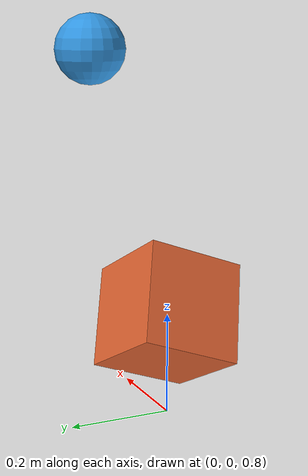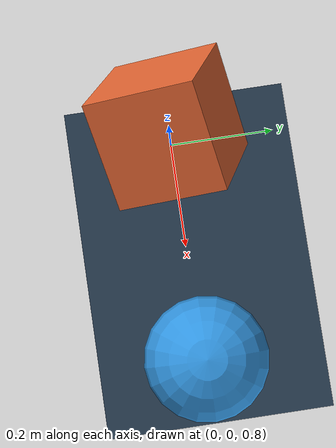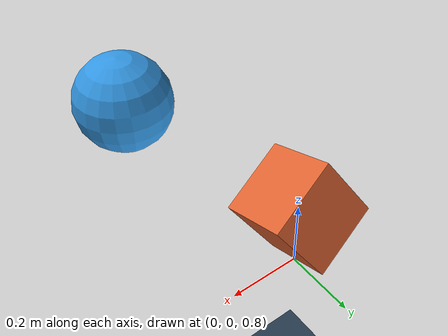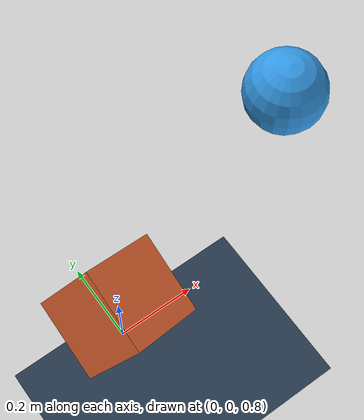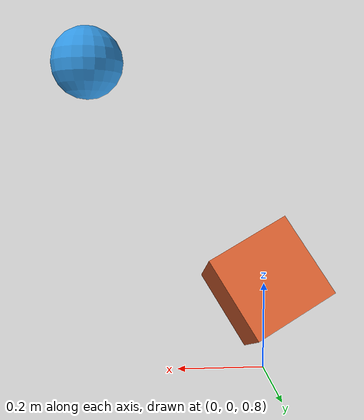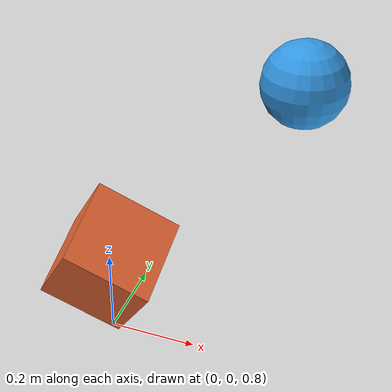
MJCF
<mujoco model="falling_box">

  <!-- 전역 물리 옵션
       timestep   : 한 번의 mj_step이 진행하는 시간 [s]. 0.002 s = 500 Hz
       gravity    : 중력 가속도 벡터 [m/s^2]. MuJoCo는 z축이 위쪽(z-up)
       integrator : 수치 적분기. implicitfast는 안정적이고 빨라서 로봇 시뮬레이션에 권장 -->
  <option timestep="0.002" gravity="0 0 -9.81" integrator="implicitfast"/>

  <!-- asset: 텍스처/재질/메쉬 등 "재료"를 선언하는 곳. 바닥 무늬는 보기 좋게 하려는 것일 뿐 물리와 무관 -->
  <asset>
    <texture name="grid" type="2d" builtin="checker" rgb1="0.2 0.3 0.4" rgb2="0.1 0.15 0.2"
             width="512" height="512"/>
    <material name="grid" texture="grid" texrepeat="8 8" reflectance="0.2"/>
  </asset>

  <!-- worldbody: 세상 그 자체. 여기에 직접 붙은 geom은 움직이지 않는 고정 물체 -->
  <worldbody>
    <light pos="0 0 3" dir="0 0 -1" directional="true"/>

    <!-- 바닥: plane 타입. size의 앞 두 값은 "그려지는" 크기이고, 충돌은 무한 평면으로 처리됨 -->
    <geom name="floor" type="plane" size="3 3 0.1" material="grid"/>

    <!-- body = 강체(rigid body) 하나. pos는 부모(여기선 world) 기준 위치 [m]
         euler는 기본 단위가 "도" → x축으로 20도, y축으로 30도 기울인 채로 떨어뜨림 -->
    <body name="box" pos="0 0 1.0" euler="20 30 0">
      <!-- freejoint: 위치 3 + 회전 3 = 6 자유도. 이것이 없으면 body는 부모에 용접(고정)됩니다.
           2족 로봇의 몸통(base)도 결국 이 freejoint로 떠 있게 됩니다 (t06 참고) -->
      <freejoint name="box_free"/>
      <!-- geom = 모양 + 충돌 + (기본적으로) 질량. mass를 주면 모양으로부터 관성이 자동 계산됨 -->
      <geom name="box_geom" type="box" size="0.1 0.1 0.1" mass="1.0" rgba="0.9 0.4 0.2 1"/>
    </body>

    <body name="ball" pos="0.4 0 1.5">
      <freejoint name="ball_free"/>
      <geom name="ball_geom" type="sphere" size="0.08" mass="0.5" rgba="0.2 0.6 0.9 1"/>
    </body>
  </worldbody>

</mujoco>
